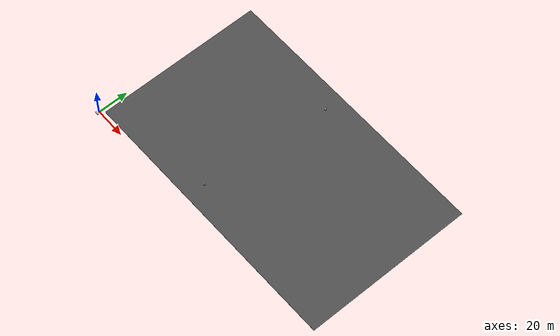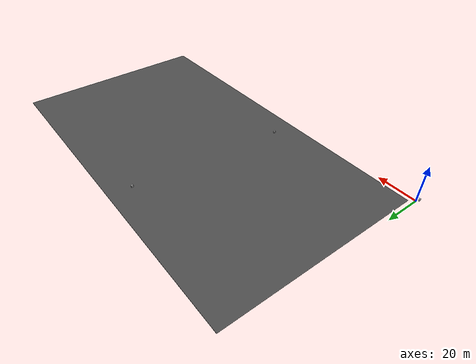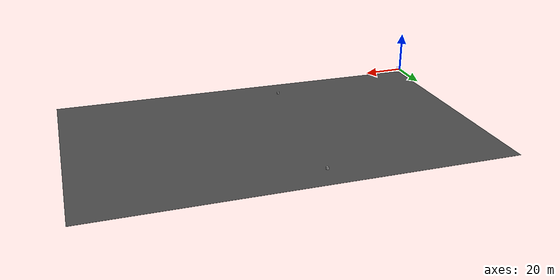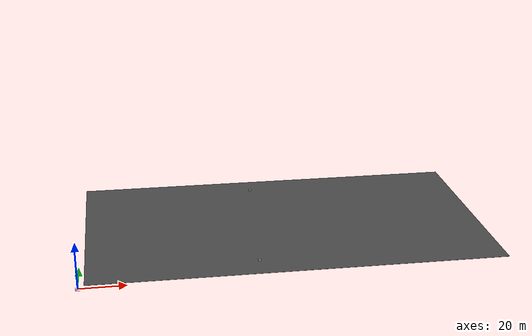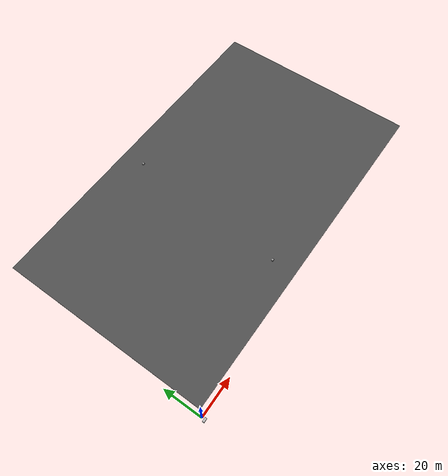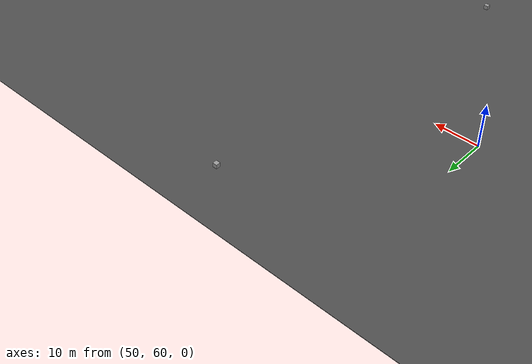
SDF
<sdf version="1.5">
 <world name="default">
  <light name="sun" type="directional">
   <pose>0 0 10 0 -0 0</pose>
   <diffuse>0.8 0.8 0.8 1</diffuse>
   <specular>0.2 0.2 0.2 1</specular>
   <attenuation>
    <range>1000</range>
    <constant>0.9</constant>
    <linear>0.01</linear>
    <quadratic>0.001</quadratic>
   </attenuation>
   <direction>-0.5 0.1 -0.9</direction>
  </light>
  <model name="box1">
   <pose>-0.00699 -1.5 0.5 2e-06 -1e-06 -0</pose>
   <link name="link">
    <collision name="collision"><geometry><box><size>2 1 1</size></box></geometry></collision>
    <visual name="visual"><geometry><box><size>2 1 1</size></box></geometry></visual>
    <inertial>
     <inertia><ixx>1</ixx><ixy>0</ixy><ixz>0</ixz><iyy>1</iyy><iyz>0</iyz><izz>1</izz></inertia>
     <mass>1</mass>
    </inertial>
   </link>
   <plugin name="model_pull" filename="build/libsdcBox.so"/>
  </model>
  <physics name="default_physics" default="0" type="ode">
   <max_step_size>0.001</max_step_size>
   <real_time_factor>1</real_time_factor>
   <real_time_update_rate>1000</real_time_update_rate>
   <gravity>0 0 -9.8</gravity>
   <magnetic_field>6e-06 2.3e-05 -4.2e-05</magnetic_field>
  </physics>
  <audio><device>default</device></audio>
  <spherical_coordinates>
   <surface_model>EARTH_WGS84</surface_model>
   <latitude_deg>0</latitude_deg>
   <longitude_deg>0</longitude_deg>
   <elevation>0</elevation>
   <heading_deg>0</heading_deg>
  </spherical_coordinates>
  <model name="curved_road_2">
   <static>1</static>
   <link name="link">
    <collision name="collision"><geometry><box><size>180.814 149.977 0.1</size></box></geometry></collision>
    <visual name="visual">
     <cast_shadows>0</cast_shadows>
     <geometry><box><size>180.814 108.849 0.1</size></box></geometry>
     <material>
      <script>
       <uri>model://curved_road_2/materials/scripts</uri>
       <uri>model://curved_road_2/materials/textures</uri>
       <name>curved_road_2</name>
      </script>
     </material>
    </visual>
   </link>
   <pose>92.6645 56.9145 0 0 -0 0</pose>
  </model>
  <scene><ambient>0.4 0.4 0.4 1</ambient><background>0.7 0.7 0.7 1</background><shadows>1</shadows></scene>
  <model name="unit_box_1">
   <pose>76 15 0.5 0 -0 0</pose>
   <link name="link">
    <inertial>
     <mass>1</mass>
     <inertia>
      <ixx>0.166667</ixx>
      <ixy>0</ixy>
      <ixz>0</ixz>
      <iyy>0.166667</iyy>
      <iyz>0</iyz>
      <izz>0.166667</izz>
     </inertia>
    </inertial>
    <collision name="collision"><geometry><box><size>1 1 1</size></box></geometry></collision>
    <visual name="visual">
     <geometry><box><size>1 1 1</size></box></geometry>
     <material>
      <script><name>Gazebo/Grey</name><uri>file://media/materials/scripts/gazebo.material</uri></script>
     </material>
    </visual>
   </link>
  </model>
  <model name="unit_box_2">
   <pose>83 99 0.5 0 -0 0</pose>
   <link name="link">
    <inertial>
     <mass>1</mass>
     <inertia>
      <ixx>0.166667</ixx>
      <ixy>0</ixy>
      <ixz>0</ixz>
      <iyy>0.166667</iyy>
      <iyz>0</iyz>
      <izz>0.166667</izz>
     </inertia>
    </inertial>
    <collision name="collision"><geometry><box><size>1 1 1</size></box></geometry></collision>
    <visual name="visual">
     <geometry><box><size>1 1 1</size></box></geometry>
     <material>
      <script><name>Gazebo/Grey</name><uri>file://media/materials/scripts/gazebo.material</uri></script>
     </material>
    </visual>
   </link>
  </model>
 </world>
</sdf>
